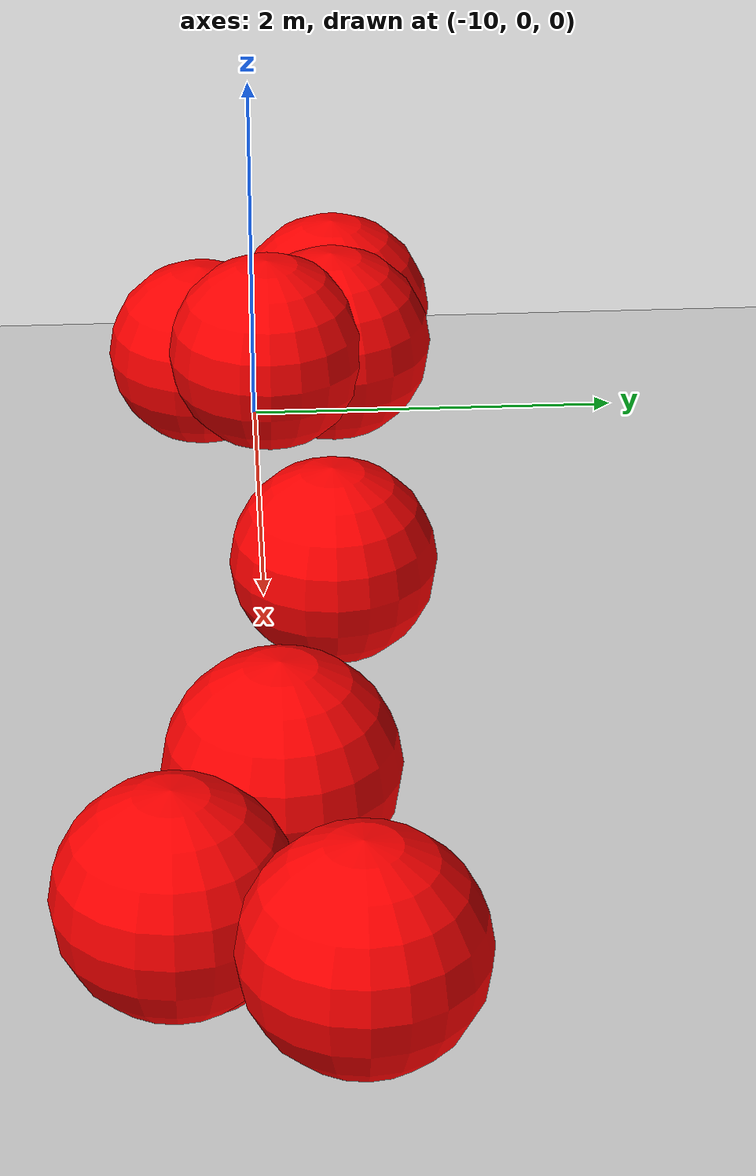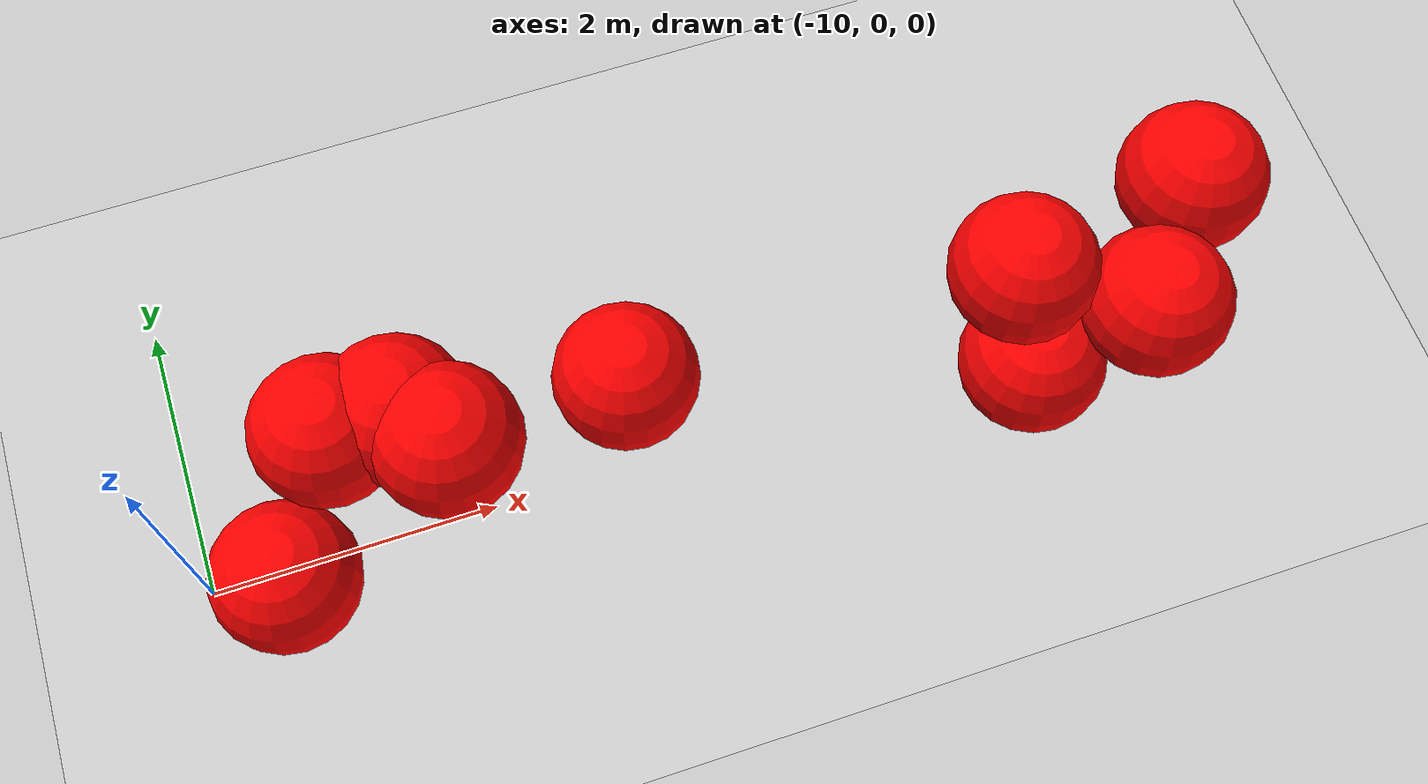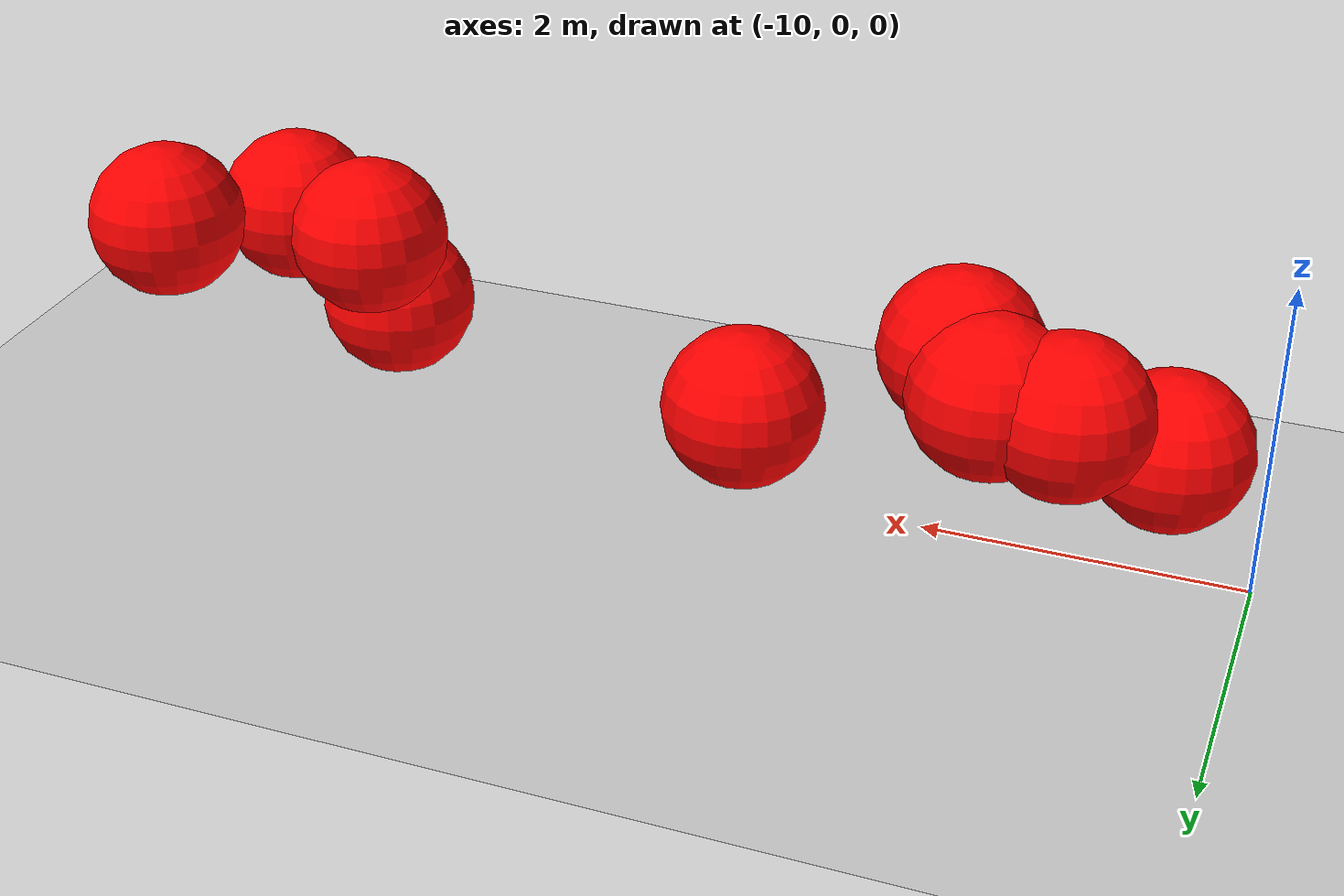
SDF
<sdf version="1.5">
 <world name="default">
  <include><uri>model://sun</uri></include>
  <include><uri>model://ground_plane</uri></include>
  <physics name="default_physics" type="bullet">
   <gravity>0 0 -9.8066</gravity>
   <ode>
    <solver>
     <type>quick</type>
     <iters>150</iters>
     <sor>0.8</sor>
     <use_dynamic_moi_rescaling>0</use_dynamic_moi_rescaling>
    </solver>
    <constraints>
     <cfm>0</cfm>
     <erp>0.2</erp>
     <contact_max_correcting_vel>100</contact_max_correcting_vel>
     <contact_surface_layer>0.001</contact_surface_layer>
    </constraints>
   </ode>
   <bullet><solver><type>sequential_impulse</type><iters>100</iters><sor>1.0</sor></solver></bullet>
   <max_step_size>0.001</max_step_size>
   <real_time_factor>1</real_time_factor>
   <real_time_update_rate>1000</real_time_update_rate>
   <magnetic_field>6.0e-6 2.3e-5 -4.2e-5</magnetic_field>
   <max_contacts>40</max_contacts>
  </physics>
  <model name="sphere1">
   <static>1</static>
   <link name="link">
    <collision name="collision"><geometry><sphere><radius>0.5</radius></sphere></geometry></collision>
    <visual name="visual">
     <cast_shadows>0</cast_shadows>
     <geometry><sphere><radius>0.5</radius></sphere></geometry>
     <material>
      <script><name>Gazebo/Grey</name><uri>file://media/materials/scripts/gazebo.material</uri></script>
      <shader type="pixel"><normal_map>__default__</normal_map></shader>
      <ambient>1 0 0 1</ambient>
      <diffuse>0.7 0.7 0.7 1</diffuse>
      <specular>0.01 0.01 0.01 1</specular>
      <emissive>0 0 0 1</emissive>
     </material>
    </visual>
    <gravity>0</gravity>
   </link>
   <pose>-8.88900503227 0.402250825679 1.19289465354 0 -0 0</pose>
  </model>
  <model name="sphere2">
   <static>1</static>
   <link name="link">
    <collision name="collision"><geometry><sphere><radius>0.5</radius></sphere></geometry></collision>
    <visual name="visual">
     <cast_shadows>0</cast_shadows>
     <geometry><sphere><radius>0.5</radius></sphere></geometry>
     <material>
      <script><name>Gazebo/Grey</name><uri>file://media/materials/scripts/gazebo.material</uri></script>
      <shader type="pixel"><normal_map>__default__</normal_map></shader>
      <ambient>1 0 0 1</ambient>
      <diffuse>0.7 0.7 0.7 1</diffuse>
      <specular>0.01 0.01 0.01 1</specular>
      <emissive>0 0 0 1</emissive>
     </material>
    </visual>
    <gravity>0</gravity>
   </link>
   <pose>-2.99453010711 0.284132022801 1.38790187842 0 -0 0</pose>
  </model>
  <model name="sphere3">
   <static>1</static>
   <link name="link">
    <collision name="collision"><geometry><sphere><radius>0.5</radius></sphere></geometry></collision>
    <visual name="visual">
     <cast_shadows>0</cast_shadows>
     <geometry><sphere><radius>0.5</radius></sphere></geometry>
     <material>
      <script><name>Gazebo/Grey</name><uri>file://media/materials/scripts/gazebo.material</uri></script>
      <shader type="pixel"><normal_map>__default__</normal_map></shader>
      <ambient>1 0 0 1</ambient>
      <diffuse>0.7 0.7 0.7 1</diffuse>
      <specular>0.01 0.01 0.01 1</specular>
      <emissive>0 0 0 1</emissive>
     </material>
    </visual>
    <gravity>0</gravity>
   </link>
   <pose>-9.41093211539 -0.280704682482 0.697061615252 0 -0 0</pose>
  </model>
  <model name="sphere4">
   <static>1</static>
   <link name="link">
    <collision name="collision"><geometry><sphere><radius>0.5</radius></sphere></geometry></collision>
    <visual name="visual">
     <cast_shadows>0</cast_shadows>
     <geometry><sphere><radius>0.5</radius></sphere></geometry>
     <material>
      <script><name>Gazebo/Grey</name><uri>file://media/materials/scripts/gazebo.material</uri></script>
      <shader type="pixel"><normal_map>__default__</normal_map></shader>
      <ambient>1 0 0 1</ambient>
      <diffuse>0.7 0.7 0.7 1</diffuse>
      <specular>0.01 0.01 0.01 1</specular>
      <emissive>0 0 0 1</emissive>
     </material>
    </visual>
    <gravity>0</gravity>
   </link>
   <pose>-3.54415045345 -0.439668338381 1.27177111973 0 -0 0</pose>
  </model>
  <model name="sphere5">
   <static>1</static>
   <link name="link">
    <collision name="collision"><geometry><sphere><radius>0.5</radius></sphere></geometry></collision>
    <visual name="visual">
     <cast_shadows>0</cast_shadows>
     <geometry><sphere><radius>0.5</radius></sphere></geometry>
     <material>
      <script><name>Gazebo/Grey</name><uri>file://media/materials/scripts/gazebo.material</uri></script>
      <shader type="pixel"><normal_map>__default__</normal_map></shader>
      <ambient>1 0 0 1</ambient>
      <diffuse>0.7 0.7 0.7 1</diffuse>
      <specular>0.01 0.01 0.01 1</specular>
      <emissive>0 0 0 1</emissive>
     </material>
    </visual>
    <gravity>0</gravity>
   </link>
   <pose>-8.43234138809 0.382308272657 1.22492288396 0 -0 0</pose>
  </model>
  <model name="sphere6">
   <static>1</static>
   <link name="link">
    <collision name="collision"><geometry><sphere><radius>0.5</radius></sphere></geometry></collision>
    <visual name="visual">
     <cast_shadows>0</cast_shadows>
     <geometry><sphere><radius>0.5</radius></sphere></geometry>
     <material>
      <script><name>Gazebo/Grey</name><uri>file://media/materials/scripts/gazebo.material</uri></script>
      <shader type="pixel"><normal_map>__default__</normal_map></shader>
      <ambient>1 0 0 1</ambient>
      <diffuse>0.7 0.7 0.7 1</diffuse>
      <specular>0.01 0.01 0.01 1</specular>
      <emissive>0 0 0 1</emissive>
     </material>
    </visual>
    <gravity>0</gravity>
   </link>
   <pose>-8.17261415727 0.0522665439399 1.31658973442 0 -0 0</pose>
  </model>
  <model name="sphere7">
   <static>1</static>
   <link name="link">
    <collision name="collision"><geometry><sphere><radius>0.5</radius></sphere></geometry></collision>
    <visual name="visual">
     <cast_shadows>0</cast_shadows>
     <geometry><sphere><radius>0.5</radius></sphere></geometry>
     <material>
      <script><name>Gazebo/Grey</name><uri>file://media/materials/scripts/gazebo.material</uri></script>
      <shader type="pixel"><normal_map>__default__</normal_map></shader>
      <ambient>1 0 0 1</ambient>
      <diffuse>0.7 0.7 0.7 1</diffuse>
      <specular>0.01 0.01 0.01 1</specular>
      <emissive>0 0 0 1</emissive>
     </material>
    </visual>
    <gravity>0</gravity>
   </link>
   <pose>-4.30764448725 0.00960765696468 1.37079209586 0 -0 0</pose>
  </model>
  <model name="sphere8">
   <static>1</static>
   <link name="link">
    <collision name="collision"><geometry><sphere><radius>0.5</radius></sphere></geometry></collision>
    <visual name="visual">
     <cast_shadows>0</cast_shadows>
     <geometry><sphere><radius>0.5</radius></sphere></geometry>
     <material>
      <script><name>Gazebo/Grey</name><uri>file://media/materials/scripts/gazebo.material</uri></script>
      <shader type="pixel"><normal_map>__default__</normal_map></shader>
      <ambient>1 0 0 1</ambient>
      <diffuse>0.7 0.7 0.7 1</diffuse>
      <specular>0.01 0.01 0.01 1</specular>
      <emissive>0 0 0 1</emissive>
     </material>
    </visual>
    <gravity>0</gravity>
   </link>
   <pose>-6.93115729427 0.324035891262 0.817204870925 0 -0 0</pose>
  </model>
  <model name="sphere9">
   <static>1</static>
   <link name="link">
    <collision name="collision"><geometry><sphere><radius>0.5</radius></sphere></geometry></collision>
    <visual name="visual">
     <cast_shadows>0</cast_shadows>
     <geometry><sphere><radius>0.5</radius></sphere></geometry>
     <material>
      <script><name>Gazebo/Grey</name><uri>file://media/materials/scripts/gazebo.material</uri></script>
      <shader type="pixel"><normal_map>__default__</normal_map></shader>
      <ambient>1 0 0 1</ambient>
      <diffuse>0.7 0.7 0.7 1</diffuse>
      <specular>0.01 0.01 0.01 1</specular>
      <emissive>0 0 0 1</emissive>
     </material>
    </visual>
    <gravity>0</gravity>
   </link>
   <pose>-4.2868903386 -0.379883491549 0.737356581646 0 -0 0</pose>
  </model>
 </world>
</sdf>
